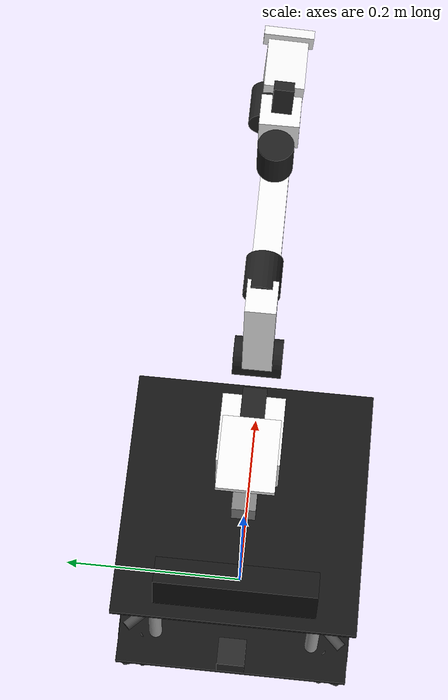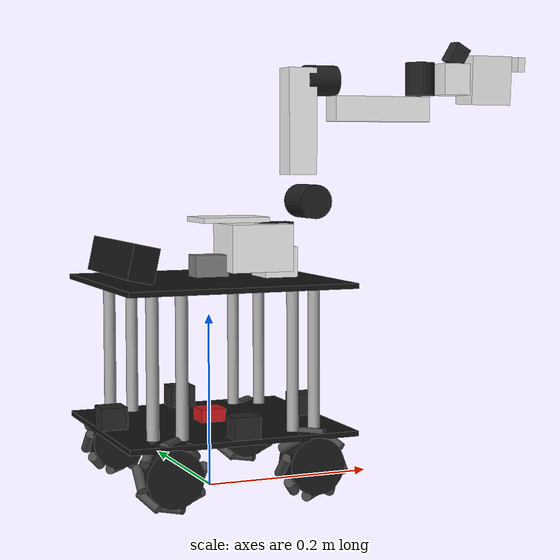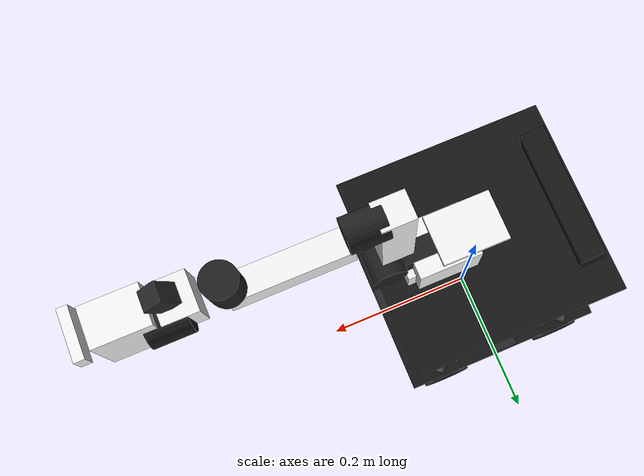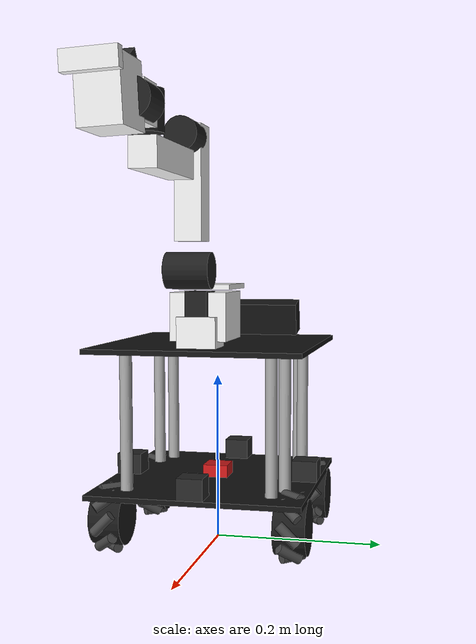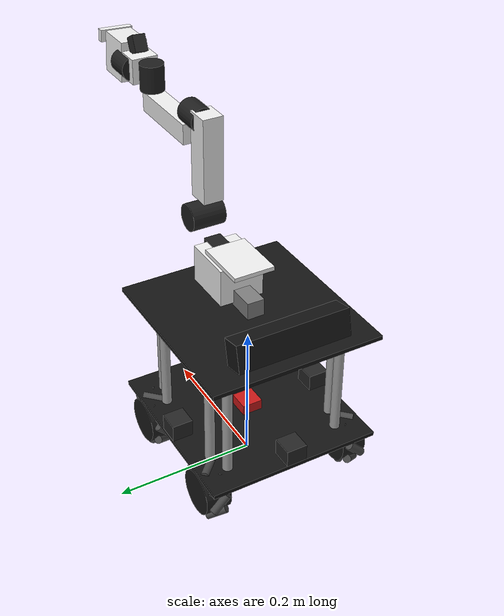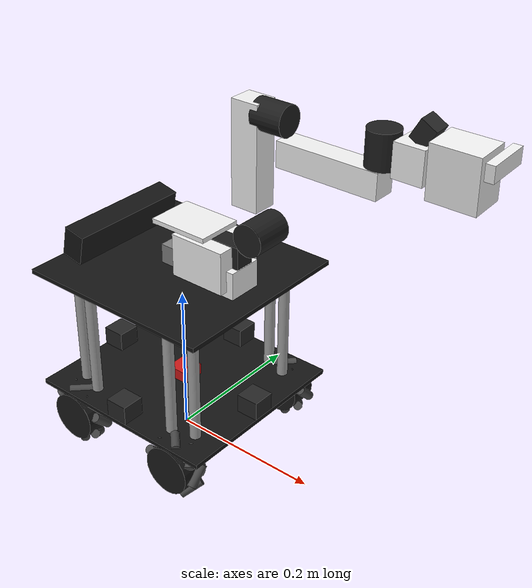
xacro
<?xml version="1.0"?>
<robot xmlns:xacro="http://www.ros.org/wiki/xacro" name="mecanum_bot">

    <xacro:property name="PI" value="3.1415926535897931"/>

    <xacro:arg name="drive" default="mecanum"/>
    <xacro:arg name="lidar" default="false"/>
    <xacro:arg name="minimal_sensors" default="false"/>
    <xacro:property name="enable_extra_cameras" value="true"/>
    <xacro:property name="front_cam_width" value="640"/>
    <xacro:property name="front_cam_height" value="480"/>
    <xacro:property name="front_cam_rate" value="30"/>
    <xacro:if value="$(arg minimal_sensors)">
        <xacro:property name="enable_extra_cameras" value="false"/>
        <xacro:property name="front_cam_width" value="160"/>
        <xacro:property name="front_cam_height" value="120"/>
        <xacro:property name="front_cam_rate" value="5"/>
    </xacro:if>

    <xacro:property name="chassis_length"    value="0.265"/>  <!-- 265 mm front-to-rear -->
    <xacro:property name="chassis_width"     value="0.250"/>  <!-- 250 mm left-to-right -->
    <xacro:property name="plate_thickness"   value="0.006"/>  <!-- 6 mm aluminium plate -->
    <xacro:property name="standoff_height"   value="0.160"/>  <!-- 160 mm between plate faces -->
    <xacro:property name="ground_clearance"  value="0.070"/>  <!-- ground → bottom of bottom plate -->

    <!-- Bottom plate (base_link) centre above base_footprint -->
    <xacro:property name="base_link_z_offset" value="${ground_clearance + plate_thickness / 2.0}"/>
    <!-- Top plate centre above base_link centre -->
    <xacro:property name="top_plate_dz"       value="${plate_thickness + standoff_height}"/>
    <!-- Top surface of top plate above base_link centre (used for mounting) -->
    <xacro:property name="top_surface_dz"     value="${top_plate_dz + plate_thickness / 2.0}"/>

    <!-- ================================================================
         Wheels
         ================================================================ -->
    <xacro:property name="wheel_radius"       value="0.04"/>
    <xacro:property name="wheel_width"        value="0.037"/>
    <xacro:property name="wheel_separation_x" value="0.165"/>
    <xacro:property name="wheel_separation_y" value="0.215"/>
    <!-- Negative: wheels hang below bottom plate -->
    <xacro:property name="wheel_z_offset"     value="${wheel_radius - base_link_z_offset}"/>
    <xacro:property name="wheel_x_offset"     value="${wheel_separation_x / 2.0}"/>
    <xacro:property name="wheel_y_offset"     value="${wheel_separation_y / 2.0}"/>

    <!-- ================================================================
         Masses
         ================================================================ -->
    <xacro:property name="base_mass"       value="1.5"/>
    <xacro:property name="top_plate_mass"  value="1.0"/>
    <xacro:property name="wheel_mass"      value="0.2"/>
    <xacro:property name="camera_mass"     value="0.05"/>
    <xacro:property name="astra_mass"      value="0.300"/>

    <!-- ================================================================
         OV9732 camera body size (camera + case)
         ================================================================ -->
    <xacro:property name="camera_size_x"   value="0.030"/>  <!-- depth into face -->
    <xacro:property name="camera_size_y"   value="0.030"/>  <!-- width -->
    <xacro:property name="camera_size_z"   value="0.025"/>  <!-- height -->

    <!-- ================================================================
         base_footprint — ground-level reference frame
         ================================================================ -->
    <link name="base_footprint"/>

    <link name="base_link">
        <visual>
            <origin xyz="0 0 0" rpy="0 0 0"/>
            <geometry>
                <box size="${chassis_length} ${chassis_width} ${plate_thickness}"/>
            </geometry>
            <material name="chassis_black">
                <color rgba="0.08 0.08 0.08 1"/>
            </material>
        </visual>
        <collision>
            <origin xyz="0 0 0" rpy="0 0 0"/>
            <geometry>
                <box size="${chassis_length} ${chassis_width} ${plate_thickness}"/>
            </geometry>
        </collision>
        <inertial>
            <mass value="${base_mass}"/>
            <origin xyz="0 0 0" rpy="0 0 0"/>
            <inertia
                ixx="${base_mass / 12.0 * (chassis_width*chassis_width   + plate_thickness*plate_thickness)}"
                ixy="0" ixz="0"
                iyy="${base_mass / 12.0 * (chassis_length*chassis_length + plate_thickness*plate_thickness)}"
                iyz="0"
                izz="${base_mass / 12.0 * (chassis_length*chassis_length + chassis_width*chassis_width)}"/>
        </inertial>
    </link>

    <gazebo reference="base_link">
        <material>Gazebo/DarkGrey</material>
    </gazebo>

    <joint name="base_footprint_joint" type="fixed">
        <parent link="base_footprint"/>
        <child link="base_link"/>
        <origin xyz="0 0 ${base_link_z_offset}" rpy="0 0 0"/>
    </joint>

    <xacro:macro name="standoff" params="prefix x_pos y_pos">
        <link name="${prefix}_standoff_link">
            <visual>
                <origin xyz="0 0 0" rpy="0 0 0"/>
                <geometry>
                    <cylinder radius="0.007" length="${standoff_height}"/>
                </geometry>
                <material name="standoff_silver">
                    <color rgba="0.65 0.65 0.65 1"/>
                </material>
            </visual>
            <collision>
                <origin xyz="0 0 0" rpy="0 0 0"/>
                <geometry>
                    <cylinder radius="0.007" length="${standoff_height}"/>
                </geometry>
            </collision>
            <inertial>
                <mass value="0.04"/>
                <origin xyz="0 0 0" rpy="0 0 0"/>
                <inertia ixx="0.0001" ixy="0" ixz="0" iyy="0.0001" iyz="0" izz="0.0001"/>
            </inertial>
        </link>
        <joint name="${prefix}_standoff_joint" type="fixed">
            <parent link="base_link"/>
            <child link="${prefix}_standoff_link"/>
            <!-- standoff spans from top face of bottom plate to bottom face of top plate -->
            <origin xyz="${x_pos} ${y_pos} ${plate_thickness / 2.0 + standoff_height / 2.0}" rpy="0 0 0"/>
        </joint>
    </xacro:macro>

    <!-- 8 standoffs: two pairs near each corner -->
    <xacro:standoff prefix="so_fl_a" x_pos=" 0.095" y_pos=" 0.085"/>
    <xacro:standoff prefix="so_fl_b" x_pos=" 0.065" y_pos=" 0.095"/>
    <xacro:standoff prefix="so_fr_a" x_pos=" 0.095" y_pos="-0.085"/>
    <xacro:standoff prefix="so_fr_b" x_pos=" 0.065" y_pos="-0.095"/>
    <xacro:standoff prefix="so_rl_a" x_pos="-0.095" y_pos=" 0.085"/>
    <xacro:standoff prefix="so_rl_b" x_pos="-0.065" y_pos=" 0.095"/>
    <xacro:standoff prefix="so_rr_a" x_pos="-0.095" y_pos="-0.085"/>
    <xacro:standoff prefix="so_rr_b" x_pos="-0.065" y_pos="-0.095"/>

    <link name="top_plate_link">
        <visual>
            <origin xyz="0 0 0" rpy="0 0 0"/>
            <geometry>
                <box size="${chassis_length} ${chassis_width} ${plate_thickness}"/>
            </geometry>
            <material name="chassis_black"/>
        </visual>
        <collision>
            <origin xyz="0 0 0" rpy="0 0 0"/>
            <geometry>
                <box size="${chassis_length} ${chassis_width} ${plate_thickness}"/>
            </geometry>
        </collision>
        <inertial>
            <mass value="${top_plate_mass}"/>
            <origin xyz="0 0 0" rpy="0 0 0"/>
            <inertia
                ixx="${top_plate_mass / 12.0 * (chassis_width*chassis_width   + plate_thickness*plate_thickness)}"
                ixy="0" ixz="0"
                iyy="${top_plate_mass / 12.0 * (chassis_length*chassis_length + plate_thickness*plate_thickness)}"
                iyz="0"
                izz="${top_plate_mass / 12.0 * (chassis_length*chassis_length + chassis_width*chassis_width)}"/>
        </inertial>
    </link>

    <gazebo reference="top_plate_link">
        <material>Gazebo/DarkGrey</material>
    </gazebo>

    <joint name="top_plate_joint" type="fixed">
        <parent link="base_link"/>
        <child link="top_plate_link"/>
        <!-- top plate centre is one plate_thickness + standoff_height above bottom plate centre -->
        <origin xyz="0 0 ${top_plate_dz}" rpy="0 0 0"/>
    </joint>

    <xacro:macro name="base_camera" params="prefix x_pos y_pos yaw_angle with_sensor:=true cam_width:=640 cam_height:=480 cam_rate:=30">
        <link name="${prefix}_camera_link">
            <visual>
                <origin xyz="0 0 0" rpy="0 0 0"/>
                <geometry>
                    <box size="${camera_size_x} ${camera_size_y} ${camera_size_z}"/>
                </geometry>
                <material name="dark_grey">
                    <color rgba="0.15 0.15 0.15 1"/>
                </material>
            </visual>
            <collision>
                <origin xyz="0 0 0" rpy="0 0 0"/>
                <geometry>
                    <box size="${camera_size_x} ${camera_size_y} ${camera_size_z}"/>
                </geometry>
            </collision>
            <inertial>
                <mass value="${camera_mass}"/>
                <origin xyz="0 0 0" rpy="0 0 0"/>
                <inertia
                    ixx="${camera_mass / 12.0 * (camera_size_y*camera_size_y + camera_size_z*camera_size_z)}"
                    ixy="0" ixz="0"
                    iyy="${camera_mass / 12.0 * (camera_size_x*camera_size_x + camera_size_z*camera_size_z)}"
                    iyz="0"
                    izz="${camera_mass / 12.0 * (camera_size_x*camera_size_x + camera_size_y*camera_size_y)}"/>
            </inertial>
        </link>

        <!-- Cameras sit on top surface of base_link, near each edge, facing outward. -->
        <joint name="${prefix}_camera_joint" type="fixed">
            <parent link="base_link"/>
            <child link="${prefix}_camera_link"/>
            <origin xyz="${x_pos} ${y_pos} ${plate_thickness / 2.0 + camera_size_z / 2.0}"
                    rpy="0 0 ${yaw_angle}"/>
        </joint>

        <xacro:if value="${with_sensor}">
        <gazebo reference="${prefix}_camera_link">
            <sensor name="${prefix}_camera_sensor" type="camera">
                <always_on>1</always_on>
                <update_rate>${cam_rate}</update_rate>
                <visualize>false</visualize>
                <topic>/camera/${prefix}/image_raw</topic>
                <gz_frame_id>${prefix}_camera_link</gz_frame_id>
                <camera>
                    <horizontal_fov>1.745</horizontal_fov>
                    <image>
                        <width>${cam_width}</width>
                        <height>${cam_height}</height>
                        <format>R8G8B8</format>
                    </image>
                    <clip>
                        <near>0.05</near>
                        <far>10</far>
                    </clip>
                </camera>
            </sensor>
        </gazebo>
        </xacro:if>
    </xacro:macro>

    <!-- Cameras on top of the base plate, near each edge, facing outward -->
    <xacro:base_camera prefix="front"
        x_pos="${chassis_length / 2.0 - camera_size_x / 2.0}"
        y_pos="0"
        yaw_angle="0"
        with_sensor="true"
        cam_width="${front_cam_width}"
        cam_height="${front_cam_height}"
        cam_rate="${front_cam_rate}"/>

    <xacro:base_camera prefix="rear"
        x_pos="${-(chassis_length / 2.0 - camera_size_x / 2.0)}"
        y_pos="0"
        yaw_angle="${PI}"
        with_sensor="${enable_extra_cameras}"/>

    <xacro:base_camera prefix="left"
        x_pos="0"
        y_pos="${chassis_width / 2.0 - camera_size_x / 2.0}"
        yaw_angle="${PI/2}"
        with_sensor="${enable_extra_cameras}"/>

    <xacro:base_camera prefix="right"
        x_pos="0"
        y_pos="${-(chassis_width / 2.0 - camera_size_x / 2.0)}"
        yaw_angle="${-PI/2}"
        with_sensor="${enable_extra_cameras}"/>

    <link name="depth_camera_link">
        <visual>
            <origin xyz="0 0 0" rpy="0 0 0"/>
            <geometry>
                <!-- 165 mm wide, 30 mm deep, 40 mm tall -->
                <box size="0.030 0.165 0.040"/>
            </geometry>
            <material name="astra_black">
                <color rgba="0.08 0.08 0.08 1"/>
            </material>
        </visual>
        <collision>
            <origin xyz="0 0 0" rpy="0 0 0"/>
            <geometry>
                <box size="0.030 0.165 0.040"/>
            </geometry>
        </collision>
        <inertial>
            <mass value="${astra_mass}"/>
            <origin xyz="0 0 0" rpy="0 0 0"/>
            <inertia
                ixx="${astra_mass / 12.0 * (0.165*0.165 + 0.040*0.040)}"
                ixy="0" ixz="0"
                iyy="${astra_mass / 12.0 * (0.030*0.030 + 0.040*0.040)}"
                iyz="0"
                izz="${astra_mass / 12.0 * (0.030*0.030 + 0.165*0.165)}"/>
        </inertial>
    </link>

    <!-- Rear-centre of top plate, 20 mm above surface, 12° down-tilt, facing rearward (yaw=PI) -->
    <joint name="depth_camera_joint" type="fixed">
        <parent link="top_plate_link"/>
        <child link="depth_camera_link"/>
        <origin xyz="${-(chassis_length / 2.0 - 0.030)} 0 ${plate_thickness / 2.0 + 0.025}"
                rpy="0 -0.2094 ${PI}"/>
    </joint>

    <!-- Optical frame: Z forward, X right, Y down (ROS convention) -->
    <link name="depth_camera_optical_frame"/>
    <joint name="depth_camera_optical_joint" type="fixed">
        <parent link="depth_camera_link"/>
        <child link="depth_camera_optical_frame"/>
        <origin xyz="0 0 0" rpy="${-PI/2} 0 ${-PI/2}"/>
    </joint>

    <xacro:if value="${enable_extra_cameras}">
    <gazebo reference="depth_camera_link">
        <sensor name="astra_pro_sensor" type="rgbd_camera">
            <always_on>1</always_on>
            <update_rate>30</update_rate>
            <visualize>false</visualize>
            <topic>/camera/depth</topic>
            <gz_frame_id>depth_camera_optical_frame</gz_frame_id>
            <camera>
                <horizontal_fov>1.0472</horizontal_fov>
                <image>
                    <width>640</width>
                    <height>480</height>
                    <format>R_FLOAT32</format>
                </image>
                <clip>
                    <near>0.6</near>
                    <far>8.0</far>
                </clip>
                <noise>
                    <type>gaussian</type>
                    <mean>0.0</mean>
                    <stddev>0.005</stddev>
                </noise>
            </camera>
        </sensor>
    </gazebo>
    </xacro:if>

    <link name="camera_link">
        <visual>
            <origin xyz="0 0 0" rpy="0 0 0"/>
            <geometry>
                <box size="0.040 0.025 0.025"/>
            </geometry>
            <material name="grey">
                <color rgba="0.5 0.5 0.5 1"/>
            </material>
        </visual>
        <collision>
            <origin xyz="0 0 0" rpy="0 0 0"/>
            <geometry><box size="0.040 0.025 0.025"/></geometry>
        </collision>
        <inertial>
            <mass value="${camera_mass}"/>
            <origin xyz="0 0 0" rpy="0 0 0"/>
            <inertia ixx="1e-5" ixy="0" ixz="0" iyy="1e-5" iyz="0" izz="1e-5"/>
        </inertial>
    </link>

    <joint name="camera_joint" type="fixed">
        <parent link="top_plate_link"/>
        <child link="camera_link"/>
        <origin xyz="0 0 ${plate_thickness / 2.0 + 0.015}" rpy="0 0 0"/>
    </joint>

    <xacro:if value="${enable_extra_cameras}">
    <gazebo reference="camera_link">
        <sensor name="camera_sensor" type="camera">
            <always_on>1</always_on>
            <update_rate>30</update_rate>
            <visualize>false</visualize>
            <topic>/camera/image_raw</topic>
            <gz_frame_id>camera_link</gz_frame_id>
            <camera>
                <horizontal_fov>1.047</horizontal_fov>
                <image>
                    <width>640</width>
                    <height>480</height>
                    <format>R8G8B8</format>
                </image>
                <clip>
                    <near>0.05</near>
                    <far>50</far>
                </clip>
            </camera>
        </sensor>
    </gazebo>
    </xacro:if>

    <link name="imu_link">
        <visual>
            <origin xyz="0 0 0" rpy="0 0 0"/>
            <geometry><box size="0.03 0.03 0.015"/></geometry>
            <material name="red"><color rgba="0.8 0.1 0.1 1"/></material>
        </visual>
        <collision>
            <origin xyz="0 0 0" rpy="0 0 0"/>
            <geometry><box size="0.03 0.03 0.015"/></geometry>
        </collision>
        <inertial>
            <mass value="0.01"/>
            <origin xyz="0 0 0" rpy="0 0 0"/>
            <inertia ixx="1e-6" ixy="0" ixz="0" iyy="1e-6" iyz="0" izz="1e-6"/>
        </inertial>
    </link>

    <joint name="imu_joint" type="fixed">
        <parent link="base_link"/>
        <child link="imu_link"/>
        <!-- Centred on bottom plate, slightly above surface -->
        <origin xyz="0 0 ${plate_thickness / 2.0 + 0.008}" rpy="0 0 0"/>
    </joint>

    <!-- rR  = roller centre radius  = wheel_radius − 0.006        -->
    <!-- rRn = rR × sin(π/4) ≈ rR × 0.7071  (diagonal positions)  -->

    <xacro:macro name="wheel" params="prefix x_reflect y_reflect cs">
        <link name="${prefix}_wheel_link">

            <!-- Hub — solid dark cylinder, slightly narrower than roller rim -->
            <visual>
                <origin xyz="0 0 0" rpy="${PI/2} 0 0"/>
                <geometry>
                    <cylinder radius="${wheel_radius * 0.80}" length="${wheel_width}"/>
                </geometry>
                <material name="wheel_black">
                    <color rgba="0.10 0.10 0.10 1"/>
                </material>
            </visual>

            <!-- 8 barrel rollers arranged around the circumference at 45° intervals -->
            <!-- φ = 0   (top,    +Z) -->
            <visual>
                <origin xyz="0 0 ${wheel_radius - 0.006}"
                        rpy="${cs * (-PI/4)} ${PI/2} 0"/>
                <geometry><cylinder radius="0.006" length="0.030"/></geometry>
                <material name="roller_grey"><color rgba="0.28 0.28 0.28 1"/></material>
            </visual>
            <visual>
                <origin xyz="${(wheel_radius - 0.006) * 0.7071} 0 ${(wheel_radius - 0.006) * 0.7071}"
                        rpy="${cs * (-PI/4)} ${3 * PI/4} 0"/>
                <geometry><cylinder radius="0.006" length="0.030"/></geometry>
                <material name="roller_grey"/>
            </visual>
            <!-- φ = π/2  (front, +X) -->
            <visual>
                <origin xyz="${wheel_radius - 0.006} 0 0"
                        rpy="${cs * (-PI/4)} ${PI} 0"/>
                <geometry><cylinder radius="0.006" length="0.030"/></geometry>
                <material name="roller_grey"/>
            </visual>
            <visual>
                <origin xyz="${(wheel_radius - 0.006) * 0.7071} 0 ${-(wheel_radius - 0.006) * 0.7071}"
                        rpy="${cs * (-PI/4)} ${5 * PI/4} 0"/>
                <geometry><cylinder radius="0.006" length="0.030"/></geometry>
                <material name="roller_grey"/>
            </visual>
            <!-- φ = π   (bottom, −Z) -->
            <visual>
                <origin xyz="0 0 ${-(wheel_radius - 0.006)}"
                        rpy="${cs * (-PI/4)} ${3 * PI/2} 0"/>
                <geometry><cylinder radius="0.006" length="0.030"/></geometry>
                <material name="roller_grey"/>
            </visual>
            <visual>
                <origin xyz="${-(wheel_radius - 0.006) * 0.7071} 0 ${-(wheel_radius - 0.006) * 0.7071}"
                        rpy="${cs * (-PI/4)} ${7 * PI/4} 0"/>
                <geometry><cylinder radius="0.006" length="0.030"/></geometry>
                <material name="roller_grey"/>
            </visual>
            <!-- φ = 3π/2  (rear, −X) -->
            <visual>
                <origin xyz="${-(wheel_radius - 0.006)} 0 0"
                        rpy="${cs * (-PI/4)} ${2 * PI} 0"/>
                <geometry><cylinder radius="0.006" length="0.030"/></geometry>
                <material name="roller_grey"/>
            </visual>
            <visual>
                <origin xyz="${-(wheel_radius - 0.006) * 0.7071} 0 ${(wheel_radius - 0.006) * 0.7071}"
                        rpy="${cs * (-PI/4)} ${9 * PI/4} 0"/>
                <geometry><cylinder radius="0.006" length="0.030"/></geometry>
                <material name="roller_grey"/>
            </visual>

            <!-- Collision: simple cylinder for physics (covers full wheel radius) -->
            <collision>
                <origin xyz="0 0 0" rpy="${PI/2} 0 0"/>
                <geometry>
                    <cylinder radius="${wheel_radius}" length="${wheel_width}"/>
                </geometry>
            </collision>

            <inertial>
                <mass value="${wheel_mass}"/>
                <origin xyz="0 0 0" rpy="${PI/2} 0 0"/>
                <inertia
                    ixx="${wheel_mass/12.0*(3*wheel_radius*wheel_radius + wheel_width*wheel_width)}"
                    ixy="0" ixz="0"
                    iyy="${wheel_mass/2.0*(wheel_radius*wheel_radius)}"
                    iyz="0"
                    izz="${wheel_mass/12.0*(3*wheel_radius*wheel_radius + wheel_width*wheel_width)}"/>
            </inertial>
        </link>

        <gazebo reference="${prefix}_wheel_link">
            <material>Gazebo/DarkGrey</material>
            <mu1>0.8</mu1>
            <mu2>0.8</mu2>
        </gazebo>

        <!-- No yaw in joint — wheels always face straight forward/rear.
             The diagonal roller force is handled by the MecanumDrive plugin. -->
        <joint name="${prefix}_wheel_joint" type="continuous">
            <parent link="base_link"/>
            <child link="${prefix}_wheel_link"/>
            <origin xyz="${x_reflect * wheel_x_offset} ${y_reflect * wheel_y_offset} ${wheel_z_offset}"
                    rpy="0 0 0"/>
            <axis xyz="0 1 0"/>
            <limit effort="100" velocity="100"/>
        </joint>

        <transmission name="${prefix}_wheel_trans">
            <type>transmission_interface/SimpleTransmission</type>
            <joint name="${prefix}_wheel_joint">
                <hardwareInterface>hardware_interface/VelocityJointInterface</hardwareInterface>
            </joint>
            <actuator name="${prefix}_wheel_motor">
                <hardwareInterface>hardware_interface/VelocityJointInterface</hardwareInterface>
                <mechanicalReduction>1</mechanicalReduction>
            </actuator>
        </transmission>
    </xacro:macro>

    <!-- FL+RR share cs=+1 ("\"), FR+RL share cs=−1 ("/") -->
    <xacro:wheel prefix="front_left"  x_reflect=" 1" y_reflect=" 1" cs=" 1"/>
    <xacro:wheel prefix="front_right" x_reflect=" 1" y_reflect="-1" cs="-1"/>
    <xacro:wheel prefix="rear_left"   x_reflect="-1" y_reflect=" 1" cs="-1"/>
    <xacro:wheel prefix="rear_right"  x_reflect="-1" y_reflect="-1" cs=" 1"/>

    <material name="arm_white"><color rgba="0.95 0.95 0.95 1.0"/></material>
    <material name="arm_servo"><color rgba="0.12 0.12 0.12 1.0"/></material>

    <!-- Fixed joint: top plate → arm base -->
    <joint name="arm_base_joint" type="fixed">
        <parent link="top_plate_link"/>
        <child link="arm_base_link"/>
        <origin xyz="0.055 0 ${plate_thickness / 2.0}" rpy="0 0 0"/>
    </joint>

    <!-- ARM BASE — pedestal body + bottom servo -->
    <link name="arm_base_link">
        <visual>
            <!-- Main body: ~75×65×55 mm box, centred at z=0.035 -->
            <origin xyz="0 0 0.035" rpy="0 0 0"/>
            <geometry><box size="0.075 0.065 0.055"/></geometry>
            <material name="arm_white"/>
        </visual>
        <visual>
            <!-- STS3215 base servo body -->
            <origin xyz="0.026 0 0.044" rpy="0 0 0"/>
            <geometry><box size="0.040 0.025 0.040"/></geometry>
            <material name="arm_servo"/>
        </visual>
        <visual>
            <!-- Waveshare mounting plate on top -->
            <origin xyz="-0.031 0 0.068" rpy="0 0 0"/>
            <geometry><box size="0.080 0.060 0.006"/></geometry>
            <material name="arm_white"/>
        </visual>
        <collision>
            <origin xyz="0 0 0.035" rpy="0 0 0"/>
            <geometry><box size="0.075 0.065 0.070"/></geometry>
        </collision>
        <inertial>
            <origin xyz="0.0137179 -5.19711e-05 0.0334843" rpy="0 0 0"/>
            <mass value="0.147"/>
            <inertia ixx="0.000114686" ixy="-4.59787e-07" ixz="4.97151e-06"
                     iyy="0.000136117" iyz="9.75275e-08" izz="0.000130364"/>
        </inertial>
    </link>

    <!-- SHOULDER — pan servo + motor holder + rotation pitch bracket -->
    <link name="arm_shoulder_link">
        <visual>
            <!-- STS3215 shoulder servo, lying on its side -->
            <origin xyz="-0.031 0 -0.025" rpy="${PI/2} 0 0"/>
            <geometry><cylinder radius="0.020" length="0.050"/></geometry>
            <material name="arm_servo"/>
        </visual>
        <visual>
            <!-- Motor holder + rotation pitch bracket -->
            <origin xyz="0.012 0 0.046" rpy="0 0 0"/>
            <geometry><box size="0.040 0.045 0.038"/></geometry>
            <material name="arm_white"/>
        </visual>
        <collision>
            <origin xyz="-0.031 0 -0.025" rpy="${PI/2} 0 0"/>
            <geometry><cylinder radius="0.020" length="0.050"/></geometry>
        </collision>
        <inertial>
            <origin xyz="-0.0307604 -1.66727e-05 -0.0252713" rpy="0 0 0"/>
            <mass value="0.100006"/>
            <inertia ixx="8.3759e-05" ixy="7.55525e-08" ixz="-1.16342e-06"
                     iyy="8.10403e-05" iyz="1.54663e-07" izz="2.39783e-05"/>
        </inertial>
    </link>

    <!-- shoulder_pan — exact origin from so101_new_calib.urdf -->
    <joint name="arm_shoulder_pan" type="revolute">
        <origin xyz="0.0388353 -8.97657e-09 0.0624" rpy="3.14159 4.18253e-17 -3.14159"/>
        <parent link="arm_base_link"/>
        <child link="arm_shoulder_link"/>
        <axis xyz="0 0 1"/>
        <limit effort="10" velocity="10" lower="-1.91986" upper="1.91986"/>
    </joint>
    <transmission name="arm_shoulder_pan_trans">
        <type>transmission_interface/SimpleTransmission</type>
        <joint name="arm_shoulder_pan">
            <hardwareInterface>hardware_interface/PositionJointInterface</hardwareInterface>
        </joint>
        <actuator name="arm_motor1">
            <hardwareInterface>hardware_interface/PositionJointInterface</hardwareInterface>
            <mechanicalReduction>1</mechanicalReduction>
        </actuator>
    </transmission>

    <!-- UPPER ARM — beam + elbow servo -->
    <link name="arm_upper_arm_link">
        <visual>
            <!-- Upper arm beam -->
            <origin xyz="-0.065 0.012 0.018" rpy="0 0 0"/>
            <geometry><box size="0.125 0.035 0.030"/></geometry>
            <material name="arm_white"/>
        </visual>
        <visual>
            <!-- STS3215 elbow servo -->
            <origin xyz="-0.113 -0.016 0.019" rpy="${PI/2} 0 0"/>
            <geometry><cylinder radius="0.018" length="0.040"/></geometry>
            <material name="arm_servo"/>
        </visual>
        <collision>
            <origin xyz="-0.065 0.012 0.018" rpy="0 0 0"/>
            <geometry><box size="0.125 0.035 0.030"/></geometry>
        </collision>
        <inertial>
            <origin xyz="-0.0898471 -0.00838224 0.0184089" rpy="0 0 0"/>
            <mass value="0.103"/>
            <inertia ixx="4.08002e-05" ixy="-1.97819e-05" ixz="-4.03016e-08"
                     iyy="0.000147318" iyz="8.97326e-09" izz="0.000142487"/>
        </inertial>
    </link>

    <!-- shoulder_lift — exact origin from so101_new_calib.urdf -->
    <joint name="arm_shoulder_lift" type="revolute">
        <origin xyz="-0.0303992 -0.0182778 -0.0542" rpy="-1.5708 -1.5708 0"/>
        <parent link="arm_shoulder_link"/>
        <child link="arm_upper_arm_link"/>
        <axis xyz="0 0 1"/>
        <limit effort="10" velocity="10" lower="-1.74533" upper="1.74533"/>
    </joint>
    <transmission name="arm_shoulder_lift_trans">
        <type>transmission_interface/SimpleTransmission</type>
        <joint name="arm_shoulder_lift">
            <hardwareInterface>hardware_interface/PositionJointInterface</hardwareInterface>
        </joint>
        <actuator name="arm_motor2">
            <hardwareInterface>hardware_interface/PositionJointInterface</hardwareInterface>
            <mechanicalReduction>1</mechanicalReduction>
        </actuator>
    </transmission>

    <!-- LOWER ARM — forearm beam + wrist servo -->
    <link name="arm_lower_arm_link">
        <visual>
            <!-- Forearm beam -->
            <origin xyz="-0.065 -0.032 0.018" rpy="0 0 0"/>
            <geometry><box size="0.125 0.030 0.028"/></geometry>
            <material name="arm_white"/>
        </visual>
        <visual>
            <!-- STS3215 wrist servo -->
            <origin xyz="-0.122 0.005 0.019" rpy="${PI/2} 0 0"/>
            <geometry><cylinder radius="0.018" length="0.040"/></geometry>
            <material name="arm_servo"/>
        </visual>
        <collision>
            <origin xyz="-0.065 -0.032 0.018" rpy="0 0 0"/>
            <geometry><box size="0.125 0.030 0.028"/></geometry>
        </collision>
        <inertial>
            <origin xyz="-0.0980701 0.00324376 0.0182831" rpy="0 0 0"/>
            <mass value="0.104"/>
            <inertia ixx="2.87438e-05" ixy="7.41152e-06" ixz="1.26409e-06"
                     iyy="0.000159844" iyz="-4.90188e-08" izz="0.00014529"/>
        </inertial>
    </link>

    <!-- elbow_flex — exact origin from so101_new_calib.urdf -->
    <joint name="arm_elbow_flex" type="revolute">
        <origin xyz="-0.11257 -0.028 1.73763e-16" rpy="-3.63608e-16 8.74301e-16 1.5708"/>
        <parent link="arm_upper_arm_link"/>
        <child link="arm_lower_arm_link"/>
        <axis xyz="0 0 1"/>
        <limit effort="10" velocity="10" lower="-1.69" upper="1.69"/>
    </joint>
    <transmission name="arm_elbow_flex_trans">
        <type>transmission_interface/SimpleTransmission</type>
        <joint name="arm_elbow_flex">
            <hardwareInterface>hardware_interface/PositionJointInterface</hardwareInterface>
        </joint>
        <actuator name="arm_motor3">
            <hardwareInterface>hardware_interface/PositionJointInterface</hardwareInterface>
            <mechanicalReduction>1</mechanicalReduction>
        </actuator>
    </transmission>

    <!-- WRIST — roll/pitch bracket + servo (no horn) -->
    <link name="arm_wrist_link">
        <visual>
            <!-- Wrist roll-pitch body -->
            <origin xyz="0 -0.028 0.018" rpy="0 0 0"/>
            <geometry><box size="0.038 0.035 0.040"/></geometry>
            <material name="arm_white"/>
        </visual>
        <visual>
            <!-- STS3215 no-horn servo -->
            <origin xyz="0 -0.042 0.031" rpy="${PI/2} 0 0"/>
            <geometry><cylinder radius="0.018" length="0.040"/></geometry>
            <material name="arm_servo"/>
        </visual>
        <collision>
            <origin xyz="0 -0.028 0.018" rpy="0 0 0"/>
            <geometry><box size="0.038 0.035 0.040"/></geometry>
        </collision>
        <inertial>
            <origin xyz="-0.000103312 -0.0386143 0.0281156" rpy="0 0 0"/>
            <mass value="0.079"/>
            <inertia ixx="3.68263e-05" ixy="1.7893e-08" ixz="-5.28128e-08"
                     iyy="2.5391e-05" iyz="3.6412e-06" izz="2.1e-05"/>
        </inertial>
    </link>

    <!-- wrist_flex — exact origin from so101_new_calib.urdf -->
    <joint name="arm_wrist_flex" type="revolute">
        <origin xyz="-0.1349 0.0052 3.62355e-17" rpy="4.02456e-15 8.67362e-16 -1.5708"/>
        <parent link="arm_lower_arm_link"/>
        <child link="arm_wrist_link"/>
        <axis xyz="0 0 1"/>
        <limit effort="10" velocity="10" lower="-1.65806" upper="1.65806"/>
    </joint>
    <transmission name="arm_wrist_flex_trans">
        <type>transmission_interface/SimpleTransmission</type>
        <joint name="arm_wrist_flex">
            <hardwareInterface>hardware_interface/PositionJointInterface</hardwareInterface>
        </joint>
        <actuator name="arm_motor4">
            <hardwareInterface>hardware_interface/PositionJointInterface</hardwareInterface>
            <mechanicalReduction>1</mechanicalReduction>
        </actuator>
    </transmission>

    <!-- GRIPPER — roll follower body + roll servo -->
    <link name="arm_gripper_link">
        <visual>
            <!-- Wrist roll follower body -->
            <origin xyz="0 0 -0.015" rpy="0 0 0"/>
            <geometry><box size="0.060 0.040 0.055"/></geometry>
            <material name="arm_white"/>
        </visual>
        <visual>
            <!-- STS3215 roll servo -->
            <origin xyz="0.008 0 -0.023" rpy="0 ${PI/2} 0"/>
            <geometry><cylinder radius="0.018" length="0.040"/></geometry>
            <material name="arm_servo"/>
        </visual>
        <collision>
            <origin xyz="0 0 -0.015" rpy="0 0 0"/>
            <geometry><box size="0.060 0.040 0.055"/></geometry>
        </collision>
        <inertial>
            <origin xyz="0.000213627 0.000245138 -0.025187" rpy="0 0 0"/>
            <mass value="0.087"/>
            <inertia ixx="2.75087e-05" ixy="-3.35241e-07" ixz="-5.7352e-06"
                     iyy="4.33657e-05" iyz="-5.17847e-08" izz="3.45059e-05"/>
        </inertial>
    </link>

    <!-- wrist_roll — exact origin from so101_new_calib.urdf -->
    <joint name="arm_wrist_roll" type="revolute">
        <origin xyz="5.55112e-17 -0.0611 0.0181" rpy="1.5708 0.0486795 3.14159"/>
        <parent link="arm_wrist_link"/>
        <child link="arm_gripper_link"/>
        <axis xyz="0 0 1"/>
        <limit effort="10" velocity="10" lower="-2.74385" upper="2.84121"/>
    </joint>
    <transmission name="arm_wrist_roll_trans">
        <type>transmission_interface/SimpleTransmission</type>
        <joint name="arm_wrist_roll">
            <hardwareInterface>hardware_interface/PositionJointInterface</hardwareInterface>
        </joint>
        <actuator name="arm_motor5">
            <hardwareInterface>hardware_interface/PositionJointInterface</hardwareInterface>
            <mechanicalReduction>1</mechanicalReduction>
        </actuator>
    </transmission>

    <!-- GRIPPER FRAME — tool-frame reference (fixed, massless) -->
    <link name="arm_gripper_frame_link">
        <inertial>
            <origin xyz="0 0 0" rpy="0 0 0"/>
            <mass value="1e-9"/>
            <inertia ixx="1e-9" ixy="0" ixz="0" iyy="1e-9" iyz="0" izz="1e-9"/>
        </inertial>
    </link>
    <joint name="arm_gripper_frame_joint" type="fixed">
        <origin xyz="-0.0079 -0.000218121 -0.0981274" rpy="0 3.14159 0"/>
        <parent link="arm_gripper_link"/>
        <child link="arm_gripper_frame_link"/>
    </joint>

    <!-- MOVING JAW -->
    <link name="arm_moving_jaw_link">
        <visual>
            <origin xyz="0 -0.030 0.019" rpy="0 0 0"/>
            <geometry><box size="0.018 0.010 0.050"/></geometry>
            <material name="arm_white"/>
        </visual>
        <collision>
            <origin xyz="0 -0.030 0.019" rpy="0 0 0"/>
            <geometry><box size="0.018 0.010 0.050"/></geometry>
        </collision>
        <inertial>
            <origin xyz="-0.00157495 -0.0300244 0.0192755" rpy="0 0 0"/>
            <mass value="0.012"/>
            <inertia ixx="6.61427e-06" ixy="-3.19807e-07" ixz="-5.90717e-09"
                     iyy="1.89032e-06" iyz="-1.09945e-07" izz="5.28738e-06"/>
        </inertial>
    </link>

    <!-- gripper — exact origin from so101_new_calib.urdf -->
    <joint name="arm_gripper" type="revolute">
        <origin xyz="0.0202 0.0188 -0.0234" rpy="1.5708 -5.24284e-08 -1.41553e-15"/>
        <parent link="arm_gripper_link"/>
        <child link="arm_moving_jaw_link"/>
        <axis xyz="0 0 1"/>
        <limit effort="10" velocity="10" lower="-0.174533" upper="1.74533"/>
    </joint>
    <transmission name="arm_gripper_trans">
        <type>transmission_interface/SimpleTransmission</type>
        <joint name="arm_gripper">
            <hardwareInterface>hardware_interface/PositionJointInterface</hardwareInterface>
        </joint>
        <actuator name="arm_motor6">
            <hardwareInterface>hardware_interface/PositionJointInterface</hardwareInterface>
            <mechanicalReduction>1</mechanicalReduction>
        </actuator>
    </transmission>

    <link name="wrist_camera_link">
        <visual>
            <origin xyz="0 0 0" rpy="0 0 0"/>
            <geometry><box size="0.025 0.020 0.020"/></geometry>
            <material name="dark_grey"><color rgba="0.15 0.15 0.15 1"/></material>
        </visual>
        <collision>
            <origin xyz="0 0 0" rpy="0 0 0"/>
            <geometry><box size="0.025 0.020 0.020"/></geometry>
        </collision>
        <inertial>
            <mass value="${camera_mass}"/>
            <origin xyz="0 0 0" rpy="0 0 0"/>
            <inertia ixx="1e-6" ixy="0" ixz="0" iyy="1e-6" iyz="0" izz="1e-6"/>
        </inertial>
    </link>
    <joint name="wrist_camera_joint" type="fixed">
        <parent link="arm_gripper_link"/>
        <child link="wrist_camera_link"/>
        <origin xyz="0.030 0 0.025" rpy="0 ${PI/6} 0"/>
    </joint>

    <!-- Gripper contact friction so the jaw can hold the apartment grasp cube. -->
    <gazebo reference="arm_gripper_link">
        <mu1>2.0</mu1>
        <mu2>2.0</mu2>
    </gazebo>
    <gazebo reference="arm_moving_jaw_link">
        <mu1>2.0</mu1>
        <mu2>2.0</mu2>
    </gazebo>

    <!-- ================================================================
         Gazebo IMU Sensor
         ================================================================ -->
    <gazebo reference="imu_link">
        <sensor name="imu_sensor" type="imu">
            <always_on>1</always_on>
            <update_rate>100</update_rate>
            <visualize>false</visualize>
            <topic>/imu/data</topic>
            <gz_frame_id>imu_link</gz_frame_id>
            <imu>
                <angular_velocity>
                    <x><noise type="gaussian"><mean>0</mean><stddev>0.002</stddev></noise></x>
                    <y><noise type="gaussian"><mean>0</mean><stddev>0.002</stddev></noise></y>
                    <z><noise type="gaussian"><mean>0</mean><stddev>0.002</stddev></noise></z>
                </angular_velocity>
                <linear_acceleration>
                    <x><noise type="gaussian"><mean>0</mean><stddev>0.017</stddev></noise></x>
                    <y><noise type="gaussian"><mean>0</mean><stddev>0.017</stddev></noise></y>
                    <z><noise type="gaussian"><mean>0</mean><stddev>0.017</stddev></noise></z>
                </linear_acceleration>
            </imu>
        </sensor>
    </gazebo>

    <xacro:macro name="arm_joint_position_controller" params="joint">
        <plugin filename="gz-sim-joint-position-controller-system"
                name="gz::sim::systems::JointPositionController">
            <joint_name>${joint}</joint_name>
            <topic>/arm/sim/${joint}/cmd_pos</topic>
            <initial_position>0</initial_position>
            <use_velocity_commands>true</use_velocity_commands>
            <cmd_max>1.5</cmd_max>
            <cmd_min>-1.5</cmd_min>
        </plugin>
    </xacro:macro>

    <!-- ================================================================
         Gazebo Harmonic Mecanum Drive Plugin
         ================================================================ -->
    <gazebo>
        <xacro:if value="${'$(arg drive)' == 'planar'}">
        <plugin filename="gz-sim-velocity-control-system" name="gz::sim::systems::VelocityControl">
            <topic>/cmd_vel</topic>
        </plugin>
        <plugin filename="gz-sim-odometry-publisher-system" name="gz::sim::systems::OdometryPublisher">
            <odom_frame>odom</odom_frame>
            <robot_base_frame>base_footprint</robot_base_frame>
            <odom_publish_frequency>50</odom_publish_frequency>
            <odom_topic>/odom</odom_topic>
            <tf_topic>/tf</tf_topic>
            <dimensions>2</dimensions>
        </plugin>
        </xacro:if>
        <!-- drive:=mecanum (default): gz-sim mecanum drive, holonomic /cmd_vel. -->
        <xacro:unless value="${'$(arg drive)' == 'planar'}">
        <plugin filename="gz-sim-mecanum-drive-system" name="gz::sim::systems::MecanumDrive">
            <front_left_joint>front_left_wheel_joint</front_left_joint>
            <front_right_joint>front_right_wheel_joint</front_right_joint>
            <back_left_joint>rear_left_wheel_joint</back_left_joint>
            <back_right_joint>rear_right_wheel_joint</back_right_joint>
            <wheel_separation>${wheel_separation_y}</wheel_separation>
            <wheelbase>${wheel_separation_x}</wheelbase>
            <wheel_radius>${wheel_radius}</wheel_radius>
            <odom_publish_frequency>50</odom_publish_frequency>
            <min_linear_acceleration>-2.0</min_linear_acceleration>
            <max_linear_acceleration>2.0</max_linear_acceleration>
            <min_linear_velocity>-1.0</min_linear_velocity>
            <max_linear_velocity>1.0</max_linear_velocity>
            <topic>/cmd_vel</topic>
            <odom_topic>/odom</odom_topic>
            <tf_topic>/tf</tf_topic>
            <frame_id>odom</frame_id>
            <child_frame_id>base_footprint</child_frame_id>
        </plugin>
        </xacro:unless>

        <plugin filename="gz-sim-joint-state-publisher-system" name="gz::sim::systems::JointStatePublisher">
            <topic>/joint_states</topic>
            <joint_name>front_left_wheel_joint</joint_name>
            <joint_name>front_right_wheel_joint</joint_name>
            <joint_name>rear_left_wheel_joint</joint_name>
            <joint_name>rear_right_wheel_joint</joint_name>
        </plugin>

        <xacro:arm_joint_position_controller joint="arm_shoulder_pan"/>
        <xacro:arm_joint_position_controller joint="arm_shoulder_lift"/>
        <xacro:arm_joint_position_controller joint="arm_elbow_flex"/>
        <xacro:arm_joint_position_controller joint="arm_wrist_flex"/>
        <xacro:arm_joint_position_controller joint="arm_wrist_roll"/>
        <xacro:arm_joint_position_controller joint="arm_gripper"/>

        <plugin filename="gz-sim-joint-state-publisher-system" name="gz::sim::systems::JointStatePublisher">
            <topic>/arm/sim/joint_states</topic>
            <update_rate>50</update_rate>
            <joint_name>arm_shoulder_pan</joint_name>
            <joint_name>arm_shoulder_lift</joint_name>
            <joint_name>arm_elbow_flex</joint_name>
            <joint_name>arm_wrist_flex</joint_name>
            <joint_name>arm_wrist_roll</joint_name>
            <joint_name>arm_gripper</joint_name>
        </plugin>

        <!-- NOTE: gz-sim-sensors-system and gz-sim-imu-system are world-level
             plugins loaded in the world SDF — do NOT duplicate here. -->
    </gazebo>

    <!-- 2D lidar. Off unless lidar:=true (sim.launch.py). -->
    <xacro:if value="$(arg lidar)">
        <link name="lidar_link">
            <visual>
                <origin xyz="0 0 0" rpy="0 0 0"/>
                <geometry><cylinder radius="0.035" length="0.04"/></geometry>
                <material name="lidar_black"><color rgba="0.05 0.05 0.05 1"/></material>
            </visual>
            <collision>
                <origin xyz="0 0 0" rpy="0 0 0"/>
                <geometry><cylinder radius="0.035" length="0.04"/></geometry>
            </collision>
            <inertial>
                <mass value="0.1"/>
                <origin xyz="0 0 0" rpy="0 0 0"/>
                <inertia ixx="4e-5" ixy="0" ixz="0" iyy="4e-5" iyz="0" izz="6e-5"/>
            </inertial>
        </link>
        <joint name="lidar_joint" type="fixed">
            <parent link="top_plate_link"/>
            <child link="lidar_link"/>
            <origin xyz="${chassis_length / 2.0 - 0.03} 0 ${plate_thickness / 2.0 + 0.08}" rpy="0 0 0"/>
        </joint>
        <gazebo reference="lidar_link">
            <sensor name="lidar_2d" type="gpu_lidar">
                <always_on>1</always_on>
                <update_rate>10</update_rate>
                <visualize>false</visualize>
                <topic>/scan</topic>
                <gz_frame_id>lidar_link</gz_frame_id>
                <ray>
                    <scan>
                        <horizontal>
                            <samples>180</samples>
                            <resolution>1</resolution>
                            <min_angle>-3.14159</min_angle>
                            <max_angle>3.14159</max_angle>
                        </horizontal>
                        <vertical>
                            <samples>1</samples>
                            <resolution>1</resolution>
                            <min_angle>0</min_angle>
                            <max_angle>0</max_angle>
                        </vertical>
                    </scan>
                    <range>
                        <min>0.15</min>
                        <max>12.0</max>
                        <resolution>0.01</resolution>
                    </range>
                </ray>
            </sensor>
        </gazebo>
    </xacro:if>

</robot>
